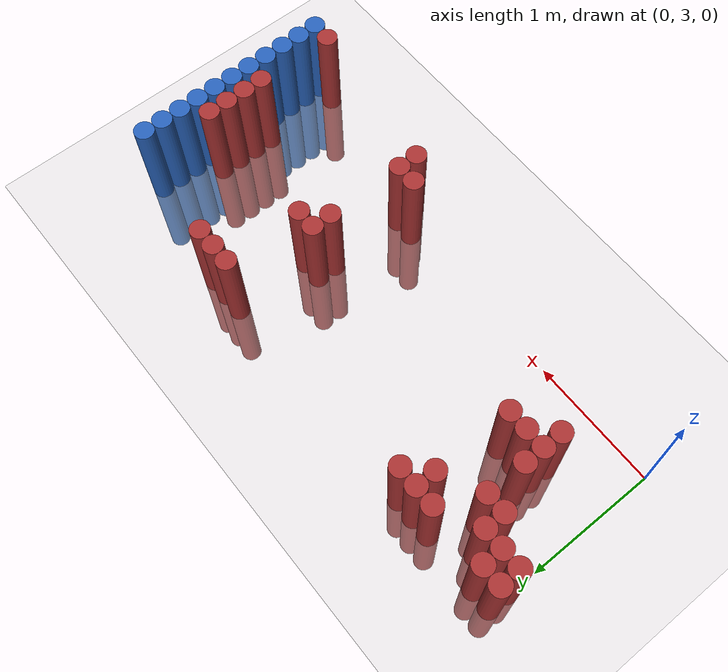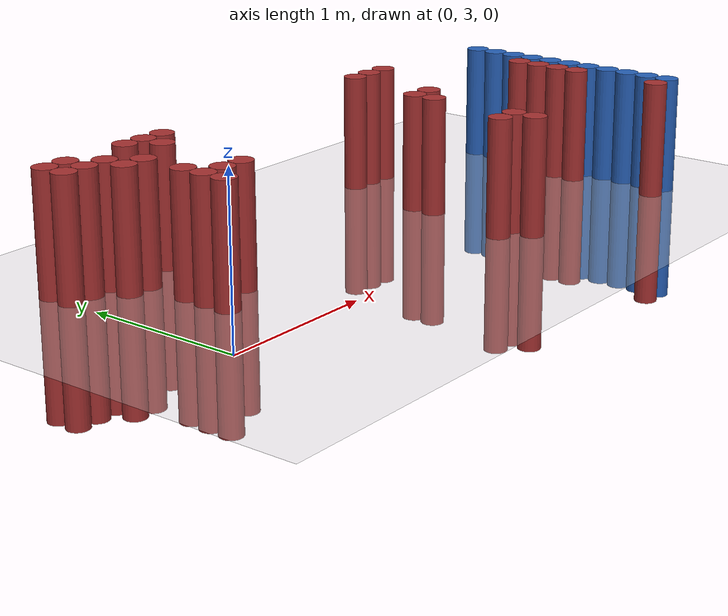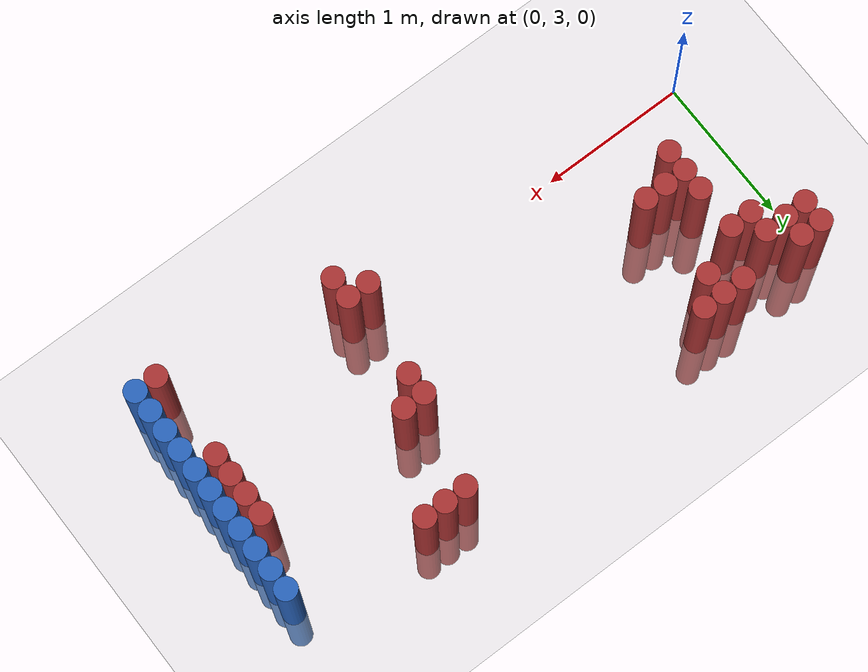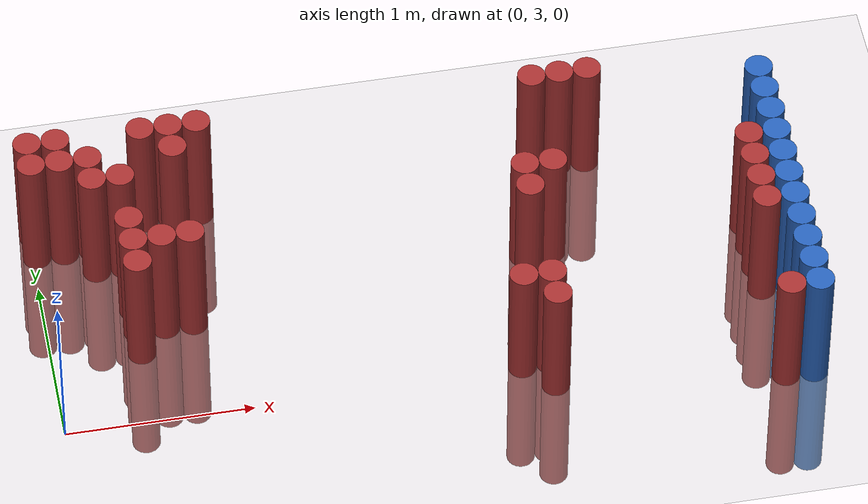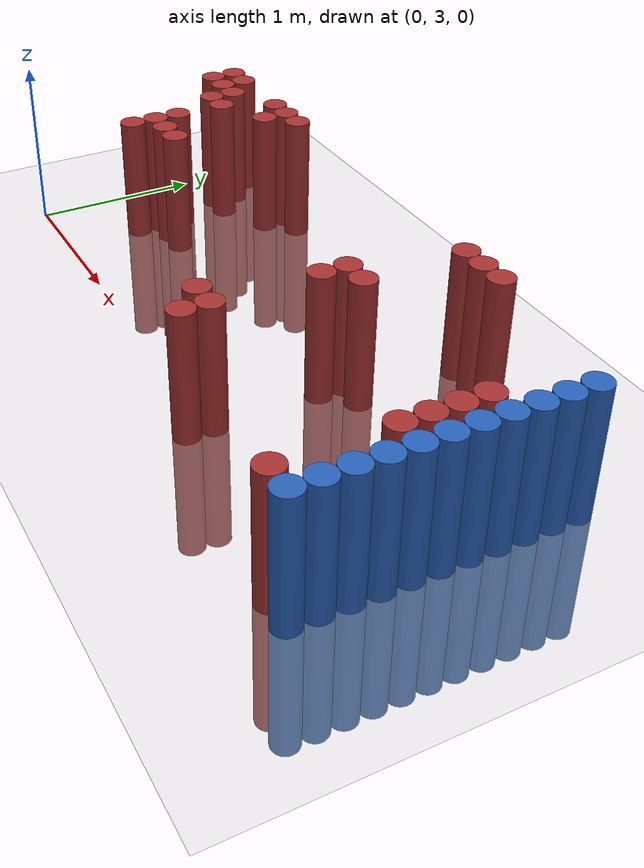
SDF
<sdf version="1.6">
 <world name="default">
  <model name="ground_plane">
   <static>1</static>
   <link name="link">
    <collision name="collision">
     <geometry><plane><normal>0 0 1</normal><size>100 100</size></plane></geometry>
     <surface><friction><ode><mu>100</mu><mu2>50</mu2></ode></friction></surface>
    </collision>
    <visual name="visual">
     <cast_shadows>0</cast_shadows>
     <geometry><plane><normal>0 0 1</normal><size>100 100</size></plane></geometry>
     <material>
      <script><uri>file://media/materials/scripts/gazebo.material</uri><name>Gazebo/Grey</name></script>
     </material>
    </visual>
   </link>
  </model>
  <model name="unit_cylinder_150">
   <static>1</static>
   <pose>3.925000 2.725000 0.000000 0.000000 0.000000 0.000000</pose>
   <link name="link">
    <inertial>
     <mass>1</mass>
     <inertia><ixx>0.145833</ixx><ixy>0</ixy><ixz>0</ixz><iyy>0.145833</iyy><iyz>0</iyz><izz>0.125</izz></inertia>
    </inertial>
    <collision name="collision">
     <geometry><cylinder><radius>0.075000</radius><length>1.5</length></cylinder></geometry>
    </collision>
    <visual name="visual">
     <geometry><cylinder><radius>0.075000</radius><length>1.5</length></cylinder></geometry>
     <material>
      <ambient>0.152000 0.379000 0.720000 1</ambient>
      <diffuse>0.152000 0.379000 0.720000 1</diffuse>
     </material>
     <material>
      <script><name>Gazebo/Grey</name><uri>file://media/materials/scripts/gazebo.material</uri></script>
     </material>
    </visual>
   </link>
  </model>
  <model name="unit_cylinder_152">
   <static>1</static>
   <pose>3.925000 2.875000 0.000000 0.000000 0.000000 0.000000</pose>
   <link name="link">
    <inertial>
     <mass>1</mass>
     <inertia><ixx>0.145833</ixx><ixy>0</ixy><ixz>0</ixz><iyy>0.145833</iyy><iyz>0</iyz><izz>0.125</izz></inertia>
    </inertial>
    <collision name="collision">
     <geometry><cylinder><radius>0.075000</radius><length>1.5</length></cylinder></geometry>
    </collision>
    <visual name="visual">
     <geometry><cylinder><radius>0.075000</radius><length>1.5</length></cylinder></geometry>
     <material>
      <ambient>0.152000 0.379000 0.720000 1</ambient>
      <diffuse>0.152000 0.379000 0.720000 1</diffuse>
     </material>
     <material>
      <script><name>Gazebo/Grey</name><uri>file://media/materials/scripts/gazebo.material</uri></script>
     </material>
    </visual>
   </link>
  </model>
  <model name="unit_cylinder_154">
   <static>1</static>
   <pose>3.925000 3.025000 0.000000 0.000000 0.000000 0.000000</pose>
   <link name="link">
    <inertial>
     <mass>1</mass>
     <inertia><ixx>0.145833</ixx><ixy>0</ixy><ixz>0</ixz><iyy>0.145833</iyy><iyz>0</iyz><izz>0.125</izz></inertia>
    </inertial>
    <collision name="collision">
     <geometry><cylinder><radius>0.075000</radius><length>1.5</length></cylinder></geometry>
    </collision>
    <visual name="visual">
     <geometry><cylinder><radius>0.075000</radius><length>1.5</length></cylinder></geometry>
     <material>
      <ambient>0.152000 0.379000 0.720000 1</ambient>
      <diffuse>0.152000 0.379000 0.720000 1</diffuse>
     </material>
     <material>
      <script><name>Gazebo/Grey</name><uri>file://media/materials/scripts/gazebo.material</uri></script>
     </material>
    </visual>
   </link>
  </model>
  <model name="unit_cylinder_156">
   <static>1</static>
   <pose>3.925000 3.175000 0.000000 0.000000 0.000000 0.000000</pose>
   <link name="link">
    <inertial>
     <mass>1</mass>
     <inertia><ixx>0.145833</ixx><ixy>0</ixy><ixz>0</ixz><iyy>0.145833</iyy><iyz>0</iyz><izz>0.125</izz></inertia>
    </inertial>
    <collision name="collision">
     <geometry><cylinder><radius>0.075000</radius><length>1.5</length></cylinder></geometry>
    </collision>
    <visual name="visual">
     <geometry><cylinder><radius>0.075000</radius><length>1.5</length></cylinder></geometry>
     <material>
      <ambient>0.152000 0.379000 0.720000 1</ambient>
      <diffuse>0.152000 0.379000 0.720000 1</diffuse>
     </material>
     <material>
      <script><name>Gazebo/Grey</name><uri>file://media/materials/scripts/gazebo.material</uri></script>
     </material>
    </visual>
   </link>
  </model>
  <model name="unit_cylinder_158">
   <static>1</static>
   <pose>3.925000 3.325000 0.000000 0.000000 0.000000 0.000000</pose>
   <link name="link">
    <inertial>
     <mass>1</mass>
     <inertia><ixx>0.145833</ixx><ixy>0</ixy><ixz>0</ixz><iyy>0.145833</iyy><iyz>0</iyz><izz>0.125</izz></inertia>
    </inertial>
    <collision name="collision">
     <geometry><cylinder><radius>0.075000</radius><length>1.5</length></cylinder></geometry>
    </collision>
    <visual name="visual">
     <geometry><cylinder><radius>0.075000</radius><length>1.5</length></cylinder></geometry>
     <material>
      <ambient>0.152000 0.379000 0.720000 1</ambient>
      <diffuse>0.152000 0.379000 0.720000 1</diffuse>
     </material>
     <material>
      <script><name>Gazebo/Grey</name><uri>file://media/materials/scripts/gazebo.material</uri></script>
     </material>
    </visual>
   </link>
  </model>
  <model name="unit_cylinder_160">
   <static>1</static>
   <pose>3.925000 3.475000 0.000000 0.000000 0.000000 0.000000</pose>
   <link name="link">
    <inertial>
     <mass>1</mass>
     <inertia><ixx>0.145833</ixx><ixy>0</ixy><ixz>0</ixz><iyy>0.145833</iyy><iyz>0</iyz><izz>0.125</izz></inertia>
    </inertial>
    <collision name="collision">
     <geometry><cylinder><radius>0.075000</radius><length>1.5</length></cylinder></geometry>
    </collision>
    <visual name="visual">
     <geometry><cylinder><radius>0.075000</radius><length>1.5</length></cylinder></geometry>
     <material>
      <ambient>0.152000 0.379000 0.720000 1</ambient>
      <diffuse>0.152000 0.379000 0.720000 1</diffuse>
     </material>
     <material>
      <script><name>Gazebo/Grey</name><uri>file://media/materials/scripts/gazebo.material</uri></script>
     </material>
    </visual>
   </link>
  </model>
  <model name="unit_cylinder_162">
   <static>1</static>
   <pose>3.925000 3.625000 0.000000 0.000000 0.000000 0.000000</pose>
   <link name="link">
    <inertial>
     <mass>1</mass>
     <inertia><ixx>0.145833</ixx><ixy>0</ixy><ixz>0</ixz><iyy>0.145833</iyy><iyz>0</iyz><izz>0.125</izz></inertia>
    </inertial>
    <collision name="collision">
     <geometry><cylinder><radius>0.075000</radius><length>1.5</length></cylinder></geometry>
    </collision>
    <visual name="visual">
     <geometry><cylinder><radius>0.075000</radius><length>1.5</length></cylinder></geometry>
     <material>
      <ambient>0.152000 0.379000 0.720000 1</ambient>
      <diffuse>0.152000 0.379000 0.720000 1</diffuse>
     </material>
     <material>
      <script><name>Gazebo/Grey</name><uri>file://media/materials/scripts/gazebo.material</uri></script>
     </material>
    </visual>
   </link>
  </model>
  <model name="unit_cylinder_164">
   <static>1</static>
   <pose>3.925000 3.775000 0.000000 0.000000 0.000000 0.000000</pose>
   <link name="link">
    <inertial>
     <mass>1</mass>
     <inertia><ixx>0.145833</ixx><ixy>0</ixy><ixz>0</ixz><iyy>0.145833</iyy><iyz>0</iyz><izz>0.125</izz></inertia>
    </inertial>
    <collision name="collision">
     <geometry><cylinder><radius>0.075000</radius><length>1.5</length></cylinder></geometry>
    </collision>
    <visual name="visual">
     <geometry><cylinder><radius>0.075000</radius><length>1.5</length></cylinder></geometry>
     <material>
      <ambient>0.152000 0.379000 0.720000 1</ambient>
      <diffuse>0.152000 0.379000 0.720000 1</diffuse>
     </material>
     <material>
      <script><name>Gazebo/Grey</name><uri>file://media/materials/scripts/gazebo.material</uri></script>
     </material>
    </visual>
   </link>
  </model>
  <model name="unit_cylinder_166">
   <static>1</static>
   <pose>3.925000 3.925000 0.000000 0.000000 0.000000 0.000000</pose>
   <link name="link">
    <inertial>
     <mass>1</mass>
     <inertia><ixx>0.145833</ixx><ixy>0</ixy><ixz>0</ixz><iyy>0.145833</iyy><iyz>0</iyz><izz>0.125</izz></inertia>
    </inertial>
    <collision name="collision">
     <geometry><cylinder><radius>0.075000</radius><length>1.5</length></cylinder></geometry>
    </collision>
    <visual name="visual">
     <geometry><cylinder><radius>0.075000</radius><length>1.5</length></cylinder></geometry>
     <material>
      <ambient>0.152000 0.379000 0.720000 1</ambient>
      <diffuse>0.152000 0.379000 0.720000 1</diffuse>
     </material>
     <material>
      <script><name>Gazebo/Grey</name><uri>file://media/materials/scripts/gazebo.material</uri></script>
     </material>
    </visual>
   </link>
  </model>
  <model name="unit_cylinder_168">
   <static>1</static>
   <pose>3.925000 4.075000 0.000000 0.000000 0.000000 0.000000</pose>
   <link name="link">
    <inertial>
     <mass>1</mass>
     <inertia><ixx>0.145833</ixx><ixy>0</ixy><ixz>0</ixz><iyy>0.145833</iyy><iyz>0</iyz><izz>0.125</izz></inertia>
    </inertial>
    <collision name="collision">
     <geometry><cylinder><radius>0.075000</radius><length>1.5</length></cylinder></geometry>
    </collision>
    <visual name="visual">
     <geometry><cylinder><radius>0.075000</radius><length>1.5</length></cylinder></geometry>
     <material>
      <ambient>0.152000 0.379000 0.720000 1</ambient>
      <diffuse>0.152000 0.379000 0.720000 1</diffuse>
     </material>
     <material>
      <script><name>Gazebo/Grey</name><uri>file://media/materials/scripts/gazebo.material</uri></script>
     </material>
    </visual>
   </link>
  </model>
  <model name="unit_cylinder_170">
   <static>1</static>
   <pose>3.925000 4.225000 0.000000 0.000000 0.000000 0.000000</pose>
   <link name="link">
    <inertial>
     <mass>1</mass>
     <inertia><ixx>0.145833</ixx><ixy>0</ixy><ixz>0</ixz><iyy>0.145833</iyy><iyz>0</iyz><izz>0.125</izz></inertia>
    </inertial>
    <collision name="collision">
     <geometry><cylinder><radius>0.075000</radius><length>1.5</length></cylinder></geometry>
    </collision>
    <visual name="visual">
     <geometry><cylinder><radius>0.075000</radius><length>1.5</length></cylinder></geometry>
     <material>
      <ambient>0.152000 0.379000 0.720000 1</ambient>
      <diffuse>0.152000 0.379000 0.720000 1</diffuse>
     </material>
     <material>
      <script><name>Gazebo/Grey</name><uri>file://media/materials/scripts/gazebo.material</uri></script>
     </material>
    </visual>
   </link>
  </model>
  <model name="unit_cylinder_388">
   <static>1</static>
   <pose>0.025000 4.225000 0.000000 0.000000 0.000000 0.000000</pose>
   <link name="link">
    <inertial>
     <mass>1</mass>
     <inertia><ixx>0.145833</ixx><ixy>0</ixy><ixz>0</ixz><iyy>0.145833</iyy><iyz>0</iyz><izz>0.125</izz></inertia>
    </inertial>
    <collision name="collision">
     <geometry><cylinder><radius>0.075000</radius><length>1.5</length></cylinder></geometry>
    </collision>
    <visual name="visual">
     <geometry><cylinder><radius>0.075000</radius><length>1.5</length></cylinder></geometry>
     <material>
      <ambient>0.648000 0.192000 0.192000 1</ambient>
      <diffuse>0.648000 0.192000 0.192000 1</diffuse>
     </material>
     <material>
      <script><name>Gazebo/Grey</name><uri>file://media/materials/scripts/gazebo.material</uri></script>
     </material>
    </visual>
   </link>
  </model>
  <model name="unit_cylinder_389">
   <static>1</static>
   <pose>0.025000 4.375000 0.000000 0.000000 0.000000 0.000000</pose>
   <link name="link">
    <inertial>
     <mass>1</mass>
     <inertia><ixx>0.145833</ixx><ixy>0</ixy><ixz>0</ixz><iyy>0.145833</iyy><iyz>0</iyz><izz>0.125</izz></inertia>
    </inertial>
    <collision name="collision">
     <geometry><cylinder><radius>0.075000</radius><length>1.5</length></cylinder></geometry>
    </collision>
    <visual name="visual">
     <geometry><cylinder><radius>0.075000</radius><length>1.5</length></cylinder></geometry>
     <material>
      <ambient>0.648000 0.192000 0.192000 1</ambient>
      <diffuse>0.648000 0.192000 0.192000 1</diffuse>
     </material>
     <material>
      <script><name>Gazebo/Grey</name><uri>file://media/materials/scripts/gazebo.material</uri></script>
     </material>
    </visual>
   </link>
  </model>
  <model name="unit_cylinder_394">
   <static>1</static>
   <pose>0.175000 4.225000 0.000000 0.000000 0.000000 0.000000</pose>
   <link name="link">
    <inertial>
     <mass>1</mass>
     <inertia><ixx>0.145833</ixx><ixy>0</ixy><ixz>0</ixz><iyy>0.145833</iyy><iyz>0</iyz><izz>0.125</izz></inertia>
    </inertial>
    <collision name="collision">
     <geometry><cylinder><radius>0.075000</radius><length>1.5</length></cylinder></geometry>
    </collision>
    <visual name="visual">
     <geometry><cylinder><radius>0.075000</radius><length>1.5</length></cylinder></geometry>
     <material>
      <ambient>0.648000 0.192000 0.192000 1</ambient>
      <diffuse>0.648000 0.192000 0.192000 1</diffuse>
     </material>
     <material>
      <script><name>Gazebo/Grey</name><uri>file://media/materials/scripts/gazebo.material</uri></script>
     </material>
    </visual>
   </link>
  </model>
  <model name="unit_cylinder_395">
   <static>1</static>
   <pose>0.175000 4.375000 0.000000 0.000000 0.000000 0.000000</pose>
   <link name="link">
    <inertial>
     <mass>1</mass>
     <inertia><ixx>0.145833</ixx><ixy>0</ixy><ixz>0</ixz><iyy>0.145833</iyy><iyz>0</iyz><izz>0.125</izz></inertia>
    </inertial>
    <collision name="collision">
     <geometry><cylinder><radius>0.075000</radius><length>1.5</length></cylinder></geometry>
    </collision>
    <visual name="visual">
     <geometry><cylinder><radius>0.075000</radius><length>1.5</length></cylinder></geometry>
     <material>
      <ambient>0.648000 0.192000 0.192000 1</ambient>
      <diffuse>0.648000 0.192000 0.192000 1</diffuse>
     </material>
     <material>
      <script><name>Gazebo/Grey</name><uri>file://media/materials/scripts/gazebo.material</uri></script>
     </material>
    </visual>
   </link>
  </model>
  <model name="unit_cylinder_400">
   <static>1</static>
   <pose>0.325000 4.075000 0.000000 0.000000 0.000000 0.000000</pose>
   <link name="link">
    <inertial>
     <mass>1</mass>
     <inertia><ixx>0.145833</ixx><ixy>0</ixy><ixz>0</ixz><iyy>0.145833</iyy><iyz>0</iyz><izz>0.125</izz></inertia>
    </inertial>
    <collision name="collision">
     <geometry><cylinder><radius>0.075000</radius><length>1.5</length></cylinder></geometry>
    </collision>
    <visual name="visual">
     <geometry><cylinder><radius>0.075000</radius><length>1.5</length></cylinder></geometry>
     <material>
      <ambient>0.648000 0.192000 0.192000 1</ambient>
      <diffuse>0.648000 0.192000 0.192000 1</diffuse>
     </material>
     <material>
      <script><name>Gazebo/Grey</name><uri>file://media/materials/scripts/gazebo.material</uri></script>
     </material>
    </visual>
   </link>
  </model>
  <model name="unit_cylinder_401">
   <static>1</static>
   <pose>0.325000 4.225000 0.000000 0.000000 0.000000 0.000000</pose>
   <link name="link">
    <inertial>
     <mass>1</mass>
     <inertia><ixx>0.145833</ixx><ixy>0</ixy><ixz>0</ixz><iyy>0.145833</iyy><iyz>0</iyz><izz>0.125</izz></inertia>
    </inertial>
    <collision name="collision">
     <geometry><cylinder><radius>0.075000</radius><length>1.5</length></cylinder></geometry>
    </collision>
    <visual name="visual">
     <geometry><cylinder><radius>0.075000</radius><length>1.5</length></cylinder></geometry>
     <material>
      <ambient>0.648000 0.192000 0.192000 1</ambient>
      <diffuse>0.648000 0.192000 0.192000 1</diffuse>
     </material>
     <material>
      <script><name>Gazebo/Grey</name><uri>file://media/materials/scripts/gazebo.material</uri></script>
     </material>
    </visual>
   </link>
  </model>
  <model name="unit_cylinder_406">
   <static>1</static>
   <pose>0.475000 3.475000 0.000000 0.000000 0.000000 0.000000</pose>
   <link name="link">
    <inertial>
     <mass>1</mass>
     <inertia><ixx>0.145833</ixx><ixy>0</ixy><ixz>0</ixz><iyy>0.145833</iyy><iyz>0</iyz><izz>0.125</izz></inertia>
    </inertial>
    <collision name="collision">
     <geometry><cylinder><radius>0.075000</radius><length>1.5</length></cylinder></geometry>
    </collision>
    <visual name="visual">
     <geometry><cylinder><radius>0.075000</radius><length>1.5</length></cylinder></geometry>
     <material>
      <ambient>0.648000 0.192000 0.192000 1</ambient>
      <diffuse>0.648000 0.192000 0.192000 1</diffuse>
     </material>
     <material>
      <script><name>Gazebo/Grey</name><uri>file://media/materials/scripts/gazebo.material</uri></script>
     </material>
    </visual>
   </link>
  </model>
  <model name="unit_cylinder_407">
   <static>1</static>
   <pose>0.475000 3.625000 0.000000 0.000000 0.000000 0.000000</pose>
   <link name="link">
    <inertial>
     <mass>1</mass>
     <inertia><ixx>0.145833</ixx><ixy>0</ixy><ixz>0</ixz><iyy>0.145833</iyy><iyz>0</iyz><izz>0.125</izz></inertia>
    </inertial>
    <collision name="collision">
     <geometry><cylinder><radius>0.075000</radius><length>1.5</length></cylinder></geometry>
    </collision>
    <visual name="visual">
     <geometry><cylinder><radius>0.075000</radius><length>1.5</length></cylinder></geometry>
     <material>
      <ambient>0.648000 0.192000 0.192000 1</ambient>
      <diffuse>0.648000 0.192000 0.192000 1</diffuse>
     </material>
     <material>
      <script><name>Gazebo/Grey</name><uri>file://media/materials/scripts/gazebo.material</uri></script>
     </material>
    </visual>
   </link>
  </model>
  <model name="unit_cylinder_408">
   <static>1</static>
   <pose>0.475000 3.775000 0.000000 0.000000 0.000000 0.000000</pose>
   <link name="link">
    <inertial>
     <mass>1</mass>
     <inertia><ixx>0.145833</ixx><ixy>0</ixy><ixz>0</ixz><iyy>0.145833</iyy><iyz>0</iyz><izz>0.125</izz></inertia>
    </inertial>
    <collision name="collision">
     <geometry><cylinder><radius>0.075000</radius><length>1.5</length></cylinder></geometry>
    </collision>
    <visual name="visual">
     <geometry><cylinder><radius>0.075000</radius><length>1.5</length></cylinder></geometry>
     <material>
      <ambient>0.648000 0.192000 0.192000 1</ambient>
      <diffuse>0.648000 0.192000 0.192000 1</diffuse>
     </material>
     <material>
      <script><name>Gazebo/Grey</name><uri>file://media/materials/scripts/gazebo.material</uri></script>
     </material>
    </visual>
   </link>
  </model>
  <model name="unit_cylinder_409">
   <static>1</static>
   <pose>0.475000 4.075000 0.000000 0.000000 0.000000 0.000000</pose>
   <link name="link">
    <inertial>
     <mass>1</mass>
     <inertia><ixx>0.145833</ixx><ixy>0</ixy><ixz>0</ixz><iyy>0.145833</iyy><iyz>0</iyz><izz>0.125</izz></inertia>
    </inertial>
    <collision name="collision">
     <geometry><cylinder><radius>0.075000</radius><length>1.5</length></cylinder></geometry>
    </collision>
    <visual name="visual">
     <geometry><cylinder><radius>0.075000</radius><length>1.5</length></cylinder></geometry>
     <material>
      <ambient>0.648000 0.192000 0.192000 1</ambient>
      <diffuse>0.648000 0.192000 0.192000 1</diffuse>
     </material>
     <material>
      <script><name>Gazebo/Grey</name><uri>file://media/materials/scripts/gazebo.material</uri></script>
     </material>
    </visual>
   </link>
  </model>
  <model name="unit_cylinder_412">
   <static>1</static>
   <pose>0.625000 3.625000 0.000000 0.000000 0.000000 0.000000</pose>
   <link name="link">
    <inertial>
     <mass>1</mass>
     <inertia><ixx>0.145833</ixx><ixy>0</ixy><ixz>0</ixz><iyy>0.145833</iyy><iyz>0</iyz><izz>0.125</izz></inertia>
    </inertial>
    <collision name="collision">
     <geometry><cylinder><radius>0.075000</radius><length>1.5</length></cylinder></geometry>
    </collision>
    <visual name="visual">
     <geometry><cylinder><radius>0.075000</radius><length>1.5</length></cylinder></geometry>
     <material>
      <ambient>0.648000 0.192000 0.192000 1</ambient>
      <diffuse>0.648000 0.192000 0.192000 1</diffuse>
     </material>
     <material>
      <script><name>Gazebo/Grey</name><uri>file://media/materials/scripts/gazebo.material</uri></script>
     </material>
    </visual>
   </link>
  </model>
  <model name="unit_cylinder_413">
   <static>1</static>
   <pose>0.625000 4.375000 0.000000 0.000000 0.000000 0.000000</pose>
   <link name="link">
    <inertial>
     <mass>1</mass>
     <inertia><ixx>0.145833</ixx><ixy>0</ixy><ixz>0</ixz><iyy>0.145833</iyy><iyz>0</iyz><izz>0.125</izz></inertia>
    </inertial>
    <collision name="collision">
     <geometry><cylinder><radius>0.075000</radius><length>1.5</length></cylinder></geometry>
    </collision>
    <visual name="visual">
     <geometry><cylinder><radius>0.075000</radius><length>1.5</length></cylinder></geometry>
     <material>
      <ambient>0.648000 0.192000 0.192000 1</ambient>
      <diffuse>0.648000 0.192000 0.192000 1</diffuse>
     </material>
     <material>
      <script><name>Gazebo/Grey</name><uri>file://media/materials/scripts/gazebo.material</uri></script>
     </material>
    </visual>
   </link>
  </model>
  <model name="unit_cylinder_418">
   <static>1</static>
   <pose>0.775000 3.625000 0.000000 0.000000 0.000000 0.000000</pose>
   <link name="link">
    <inertial>
     <mass>1</mass>
     <inertia><ixx>0.145833</ixx><ixy>0</ixy><ixz>0</ixz><iyy>0.145833</iyy><iyz>0</iyz><izz>0.125</izz></inertia>
    </inertial>
    <collision name="collision">
     <geometry><cylinder><radius>0.075000</radius><length>1.5</length></cylinder></geometry>
    </collision>
    <visual name="visual">
     <geometry><cylinder><radius>0.075000</radius><length>1.5</length></cylinder></geometry>
     <material>
      <ambient>0.648000 0.192000 0.192000 1</ambient>
      <diffuse>0.648000 0.192000 0.192000 1</diffuse>
     </material>
     <material>
      <script><name>Gazebo/Grey</name><uri>file://media/materials/scripts/gazebo.material</uri></script>
     </material>
    </visual>
   </link>
  </model>
  <model name="unit_cylinder_419">
   <static>1</static>
   <pose>0.775000 4.225000 0.000000 0.000000 0.000000 0.000000</pose>
   <link name="link">
    <inertial>
     <mass>1</mass>
     <inertia><ixx>0.145833</ixx><ixy>0</ixy><ixz>0</ixz><iyy>0.145833</iyy><iyz>0</iyz><izz>0.125</izz></inertia>
    </inertial>
    <collision name="collision">
     <geometry><cylinder><radius>0.075000</radius><length>1.5</length></cylinder></geometry>
    </collision>
    <visual name="visual">
     <geometry><cylinder><radius>0.075000</radius><length>1.5</length></cylinder></geometry>
     <material>
      <ambient>0.648000 0.192000 0.192000 1</ambient>
      <diffuse>0.648000 0.192000 0.192000 1</diffuse>
     </material>
     <material>
      <script><name>Gazebo/Grey</name><uri>file://media/materials/scripts/gazebo.material</uri></script>
     </material>
    </visual>
   </link>
  </model>
  <model name="unit_cylinder_420">
   <static>1</static>
   <pose>0.775000 4.375000 0.000000 0.000000 0.000000 0.000000</pose>
   <link name="link">
    <inertial>
     <mass>1</mass>
     <inertia><ixx>0.145833</ixx><ixy>0</ixy><ixz>0</ixz><iyy>0.145833</iyy><iyz>0</iyz><izz>0.125</izz></inertia>
    </inertial>
    <collision name="collision">
     <geometry><cylinder><radius>0.075000</radius><length>1.5</length></cylinder></geometry>
    </collision>
    <visual name="visual">
     <geometry><cylinder><radius>0.075000</radius><length>1.5</length></cylinder></geometry>
     <material>
      <ambient>0.648000 0.192000 0.192000 1</ambient>
      <diffuse>0.648000 0.192000 0.192000 1</diffuse>
     </material>
     <material>
      <script><name>Gazebo/Grey</name><uri>file://media/materials/scripts/gazebo.material</uri></script>
     </material>
    </visual>
   </link>
  </model>
  <model name="unit_cylinder_423">
   <static>1</static>
   <pose>0.925000 4.375000 0.000000 0.000000 0.000000 0.000000</pose>
   <link name="link">
    <inertial>
     <mass>1</mass>
     <inertia><ixx>0.145833</ixx><ixy>0</ixy><ixz>0</ixz><iyy>0.145833</iyy><iyz>0</iyz><izz>0.125</izz></inertia>
    </inertial>
    <collision name="collision">
     <geometry><cylinder><radius>0.075000</radius><length>1.5</length></cylinder></geometry>
    </collision>
    <visual name="visual">
     <geometry><cylinder><radius>0.075000</radius><length>1.5</length></cylinder></geometry>
     <material>
      <ambient>0.648000 0.192000 0.192000 1</ambient>
      <diffuse>0.648000 0.192000 0.192000 1</diffuse>
     </material>
     <material>
      <script><name>Gazebo/Grey</name><uri>file://media/materials/scripts/gazebo.material</uri></script>
     </material>
    </visual>
   </link>
  </model>
  <model name="unit_cylinder_456">
   <static>1</static>
   <pose>2.425000 3.025000 0.000000 0.000000 0.000000 0.000000</pose>
   <link name="link">
    <inertial>
     <mass>1</mass>
     <inertia><ixx>0.145833</ixx><ixy>0</ixy><ixz>0</ixz><iyy>0.145833</iyy><iyz>0</iyz><izz>0.125</izz></inertia>
    </inertial>
    <collision name="collision">
     <geometry><cylinder><radius>0.075000</radius><length>1.5</length></cylinder></geometry>
    </collision>
    <visual name="visual">
     <geometry><cylinder><radius>0.075000</radius><length>1.5</length></cylinder></geometry>
     <material>
      <ambient>0.648000 0.192000 0.192000 1</ambient>
      <diffuse>0.648000 0.192000 0.192000 1</diffuse>
     </material>
     <material>
      <script><name>Gazebo/Grey</name><uri>file://media/materials/scripts/gazebo.material</uri></script>
     </material>
    </visual>
   </link>
  </model>
  <model name="unit_cylinder_459">
   <static>1</static>
   <pose>2.575000 2.875000 0.000000 0.000000 0.000000 0.000000</pose>
   <link name="link">
    <inertial>
     <mass>1</mass>
     <inertia><ixx>0.145833</ixx><ixy>0</ixy><ixz>0</ixz><iyy>0.145833</iyy><iyz>0</iyz><izz>0.125</izz></inertia>
    </inertial>
    <collision name="collision">
     <geometry><cylinder><radius>0.075000</radius><length>1.5</length></cylinder></geometry>
    </collision>
    <visual name="visual">
     <geometry><cylinder><radius>0.075000</radius><length>1.5</length></cylinder></geometry>
     <material>
      <ambient>0.648000 0.192000 0.192000 1</ambient>
      <diffuse>0.648000 0.192000 0.192000 1</diffuse>
     </material>
     <material>
      <script><name>Gazebo/Grey</name><uri>file://media/materials/scripts/gazebo.material</uri></script>
     </material>
    </visual>
   </link>
  </model>
  <model name="unit_cylinder_460">
   <static>1</static>
   <pose>2.575000 3.025000 0.000000 0.000000 0.000000 0.000000</pose>
   <link name="link">
    <inertial>
     <mass>1</mass>
     <inertia><ixx>0.145833</ixx><ixy>0</ixy><ixz>0</ixz><iyy>0.145833</iyy><iyz>0</iyz><izz>0.125</izz></inertia>
    </inertial>
    <collision name="collision">
     <geometry><cylinder><radius>0.075000</radius><length>1.5</length></cylinder></geometry>
    </collision>
    <visual name="visual">
     <geometry><cylinder><radius>0.075000</radius><length>1.5</length></cylinder></geometry>
     <material>
      <ambient>0.648000 0.192000 0.192000 1</ambient>
      <diffuse>0.648000 0.192000 0.192000 1</diffuse>
     </material>
     <material>
      <script><name>Gazebo/Grey</name><uri>file://media/materials/scripts/gazebo.material</uri></script>
     </material>
    </visual>
   </link>
  </model>
  <model name="unit_cylinder_461">
   <static>1</static>
   <pose>2.575000 3.625000 0.000000 0.000000 0.000000 0.000000</pose>
   <link name="link">
    <inertial>
     <mass>1</mass>
     <inertia><ixx>0.145833</ixx><ixy>0</ixy><ixz>0</ixz><iyy>0.145833</iyy><iyz>0</iyz><izz>0.125</izz></inertia>
    </inertial>
    <collision name="collision">
     <geometry><cylinder><radius>0.075000</radius><length>1.5</length></cylinder></geometry>
    </collision>
    <visual name="visual">
     <geometry><cylinder><radius>0.075000</radius><length>1.5</length></cylinder></geometry>
     <material>
      <ambient>0.648000 0.192000 0.192000 1</ambient>
      <diffuse>0.648000 0.192000 0.192000 1</diffuse>
     </material>
     <material>
      <script><name>Gazebo/Grey</name><uri>file://media/materials/scripts/gazebo.material</uri></script>
     </material>
    </visual>
   </link>
  </model>
  <model name="unit_cylinder_462">
   <static>1</static>
   <pose>2.575000 3.775000 0.000000 0.000000 0.000000 0.000000</pose>
   <link name="link">
    <inertial>
     <mass>1</mass>
     <inertia><ixx>0.145833</ixx><ixy>0</ixy><ixz>0</ixz><iyy>0.145833</iyy><iyz>0</iyz><izz>0.125</izz></inertia>
    </inertial>
    <collision name="collision">
     <geometry><cylinder><radius>0.075000</radius><length>1.5</length></cylinder></geometry>
    </collision>
    <visual name="visual">
     <geometry><cylinder><radius>0.075000</radius><length>1.5</length></cylinder></geometry>
     <material>
      <ambient>0.648000 0.192000 0.192000 1</ambient>
      <diffuse>0.648000 0.192000 0.192000 1</diffuse>
     </material>
     <material>
      <script><name>Gazebo/Grey</name><uri>file://media/materials/scripts/gazebo.material</uri></script>
     </material>
    </visual>
   </link>
  </model>
  <model name="unit_cylinder_464">
   <static>1</static>
   <pose>2.725000 3.775000 0.000000 0.000000 0.000000 0.000000</pose>
   <link name="link">
    <inertial>
     <mass>1</mass>
     <inertia><ixx>0.145833</ixx><ixy>0</ixy><ixz>0</ixz><iyy>0.145833</iyy><iyz>0</iyz><izz>0.125</izz></inertia>
    </inertial>
    <collision name="collision">
     <geometry><cylinder><radius>0.075000</radius><length>1.5</length></cylinder></geometry>
    </collision>
    <visual name="visual">
     <geometry><cylinder><radius>0.075000</radius><length>1.5</length></cylinder></geometry>
     <material>
      <ambient>0.648000 0.192000 0.192000 1</ambient>
      <diffuse>0.648000 0.192000 0.192000 1</diffuse>
     </material>
     <material>
      <script><name>Gazebo/Grey</name><uri>file://media/materials/scripts/gazebo.material</uri></script>
     </material>
    </visual>
   </link>
  </model>
  <model name="unit_cylinder_465">
   <static>1</static>
   <pose>2.725000 4.375000 0.000000 0.000000 0.000000 0.000000</pose>
   <link name="link">
    <inertial>
     <mass>1</mass>
     <inertia><ixx>0.145833</ixx><ixy>0</ixy><ixz>0</ixz><iyy>0.145833</iyy><iyz>0</iyz><izz>0.125</izz></inertia>
    </inertial>
    <collision name="collision">
     <geometry><cylinder><radius>0.075000</radius><length>1.5</length></cylinder></geometry>
    </collision>
    <visual name="visual">
     <geometry><cylinder><radius>0.075000</radius><length>1.5</length></cylinder></geometry>
     <material>
      <ambient>0.648000 0.192000 0.192000 1</ambient>
      <diffuse>0.648000 0.192000 0.192000 1</diffuse>
     </material>
     <material>
      <script><name>Gazebo/Grey</name><uri>file://media/materials/scripts/gazebo.material</uri></script>
     </material>
    </visual>
   </link>
  </model>
  <model name="unit_cylinder_469">
   <static>1</static>
   <pose>2.875000 4.375000 0.000000 0.000000 0.000000 0.000000</pose>
   <link name="link">
    <inertial>
     <mass>1</mass>
     <inertia><ixx>0.145833</ixx><ixy>0</ixy><ixz>0</ixz><iyy>0.145833</iyy><iyz>0</iyz><izz>0.125</izz></inertia>
    </inertial>
    <collision name="collision">
     <geometry><cylinder><radius>0.075000</radius><length>1.5</length></cylinder></geometry>
    </collision>
    <visual name="visual">
     <geometry><cylinder><radius>0.075000</radius><length>1.5</length></cylinder></geometry>
     <material>
      <ambient>0.648000 0.192000 0.192000 1</ambient>
      <diffuse>0.648000 0.192000 0.192000 1</diffuse>
     </material>
     <material>
      <script><name>Gazebo/Grey</name><uri>file://media/materials/scripts/gazebo.material</uri></script>
     </material>
    </visual>
   </link>
  </model>
  <model name="unit_cylinder_475">
   <static>1</static>
   <pose>3.025000 4.375000 0.000000 0.000000 0.000000 0.000000</pose>
   <link name="link">
    <inertial>
     <mass>1</mass>
     <inertia><ixx>0.145833</ixx><ixy>0</ixy><ixz>0</ixz><iyy>0.145833</iyy><iyz>0</iyz><izz>0.125</izz></inertia>
    </inertial>
    <collision name="collision">
     <geometry><cylinder><radius>0.075000</radius><length>1.5</length></cylinder></geometry>
    </collision>
    <visual name="visual">
     <geometry><cylinder><radius>0.075000</radius><length>1.5</length></cylinder></geometry>
     <material>
      <ambient>0.648000 0.192000 0.192000 1</ambient>
      <diffuse>0.648000 0.192000 0.192000 1</diffuse>
     </material>
     <material>
      <script><name>Gazebo/Grey</name><uri>file://media/materials/scripts/gazebo.material</uri></script>
     </material>
    </visual>
   </link>
  </model>
  <model name="unit_cylinder_508">
   <static>1</static>
   <pose>3.775000 2.725000 0.000000 0.000000 0.000000 0.000000</pose>
   <link name="link">
    <inertial>
     <mass>1</mass>
     <inertia><ixx>0.145833</ixx><ixy>0</ixy><ixz>0</ixz><iyy>0.145833</iyy><iyz>0</iyz><izz>0.125</izz></inertia>
    </inertial>
    <collision name="collision">
     <geometry><cylinder><radius>0.075000</radius><length>1.5</length></cylinder></geometry>
    </collision>
    <visual name="visual">
     <geometry><cylinder><radius>0.075000</radius><length>1.5</length></cylinder></geometry>
     <material>
      <ambient>0.648000 0.192000 0.192000 1</ambient>
      <diffuse>0.648000 0.192000 0.192000 1</diffuse>
     </material>
     <material>
      <script><name>Gazebo/Grey</name><uri>file://media/materials/scripts/gazebo.material</uri></script>
     </material>
    </visual>
   </link>
  </model>
  <model name="unit_cylinder_509">
   <static>1</static>
   <pose>3.775000 3.325000 0.000000 0.000000 0.000000 0.000000</pose>
   <link name="link">
    <inertial>
     <mass>1</mass>
     <inertia><ixx>0.145833</ixx><ixy>0</ixy><ixz>0</ixz><iyy>0.145833</iyy><iyz>0</iyz><izz>0.125</izz></inertia>
    </inertial>
    <collision name="collision">
     <geometry><cylinder><radius>0.075000</radius><length>1.5</length></cylinder></geometry>
    </collision>
    <visual name="visual">
     <geometry><cylinder><radius>0.075000</radius><length>1.5</length></cylinder></geometry>
     <material>
      <ambient>0.648000 0.192000 0.192000 1</ambient>
      <diffuse>0.648000 0.192000 0.192000 1</diffuse>
     </material>
     <material>
      <script><name>Gazebo/Grey</name><uri>file://media/materials/scripts/gazebo.material</uri></script>
     </material>
    </visual>
   </link>
  </model>
  <model name="unit_cylinder_510">
   <static>1</static>
   <pose>3.775000 3.475000 0.000000 0.000000 0.000000 0.000000</pose>
   <link name="link">
    <inertial>
     <mass>1</mass>
     <inertia><ixx>0.145833</ixx><ixy>0</ixy><ixz>0</ixz><iyy>0.145833</iyy><iyz>0</iyz><izz>0.125</izz></inertia>
    </inertial>
    <collision name="collision">
     <geometry><cylinder><radius>0.075000</radius><length>1.5</length></cylinder></geometry>
    </collision>
    <visual name="visual">
     <geometry><cylinder><radius>0.075000</radius><length>1.5</length></cylinder></geometry>
     <material>
      <ambient>0.648000 0.192000 0.192000 1</ambient>
      <diffuse>0.648000 0.192000 0.192000 1</diffuse>
     </material>
     <material>
      <script><name>Gazebo/Grey</name><uri>file://media/materials/scripts/gazebo.material</uri></script>
     </material>
    </visual>
   </link>
  </model>
  <model name="unit_cylinder_511">
   <static>1</static>
   <pose>3.775000 3.625000 0.000000 0.000000 0.000000 0.000000</pose>
   <link name="link">
    <inertial>
     <mass>1</mass>
     <inertia><ixx>0.145833</ixx><ixy>0</ixy><ixz>0</ixz><iyy>0.145833</iyy><iyz>0</iyz><izz>0.125</izz></inertia>
    </inertial>
    <collision name="collision">
     <geometry><cylinder><radius>0.075000</radius><length>1.5</length></cylinder></geometry>
    </collision>
    <visual name="visual">
     <geometry><cylinder><radius>0.075000</radius><length>1.5</length></cylinder></geometry>
     <material>
      <ambient>0.648000 0.192000 0.192000 1</ambient>
      <diffuse>0.648000 0.192000 0.192000 1</diffuse>
     </material>
     <material>
      <script><name>Gazebo/Grey</name><uri>file://media/materials/scripts/gazebo.material</uri></script>
     </material>
    </visual>
   </link>
  </model>
  <model name="unit_cylinder_512">
   <static>1</static>
   <pose>3.775000 3.775000 0.000000 0.000000 0.000000 0.000000</pose>
   <link name="link">
    <inertial>
     <mass>1</mass>
     <inertia><ixx>0.145833</ixx><ixy>0</ixy><ixz>0</ixz><iyy>0.145833</iyy><iyz>0</iyz><izz>0.125</izz></inertia>
    </inertial>
    <collision name="collision">
     <geometry><cylinder><radius>0.075000</radius><length>1.5</length></cylinder></geometry>
    </collision>
    <visual name="visual">
     <geometry><cylinder><radius>0.075000</radius><length>1.5</length></cylinder></geometry>
     <material>
      <ambient>0.648000 0.192000 0.192000 1</ambient>
      <diffuse>0.648000 0.192000 0.192000 1</diffuse>
     </material>
     <material>
      <script><name>Gazebo/Grey</name><uri>file://media/materials/scripts/gazebo.material</uri></script>
     </material>
    </visual>
   </link>
  </model>
  <model name="unit_cylinder_544">
   <static>1</static>
   <pose>3.925000 2.725000 0.000000 0.000000 0.000000 0.000000</pose>
   <link name="link">
    <inertial>
     <mass>1</mass>
     <inertia><ixx>0.145833</ixx><ixy>0</ixy><ixz>0</ixz><iyy>0.145833</iyy><iyz>0</iyz><izz>0.125</izz></inertia>
    </inertial>
    <collision name="collision">
     <geometry><cylinder><radius>0.075000</radius><length>1.5</length></cylinder></geometry>
    </collision>
    <visual name="visual">
     <geometry><cylinder><radius>0.075000</radius><length>1.5</length></cylinder></geometry>
     <material>
      <ambient>0.152000 0.379000 0.720000 1</ambient>
      <diffuse>0.152000 0.379000 0.720000 1</diffuse>
     </material>
     <material>
      <script><name>Gazebo/Grey</name><uri>file://media/materials/scripts/gazebo.material</uri></script>
     </material>
    </visual>
   </link>
  </model>
  <model name="unit_cylinder_545">
   <static>1</static>
   <pose>3.925000 2.875000 0.000000 0.000000 0.000000 0.000000</pose>
   <link name="link">
    <inertial>
     <mass>1</mass>
     <inertia><ixx>0.145833</ixx><ixy>0</ixy><ixz>0</ixz><iyy>0.145833</iyy><iyz>0</iyz><izz>0.125</izz></inertia>
    </inertial>
    <collision name="collision">
     <geometry><cylinder><radius>0.075000</radius><length>1.5</length></cylinder></geometry>
    </collision>
    <visual name="visual">
     <geometry><cylinder><radius>0.075000</radius><length>1.5</length></cylinder></geometry>
     <material>
      <ambient>0.152000 0.379000 0.720000 1</ambient>
      <diffuse>0.152000 0.379000 0.720000 1</diffuse>
     </material>
     <material>
      <script><name>Gazebo/Grey</name><uri>file://media/materials/scripts/gazebo.material</uri></script>
     </material>
    </visual>
   </link>
  </model>
  <model name="unit_cylinder_546">
   <static>1</static>
   <pose>3.925000 3.025000 0.000000 0.000000 0.000000 0.000000</pose>
   <link name="link">
    <inertial>
     <mass>1</mass>
     <inertia><ixx>0.145833</ixx><ixy>0</ixy><ixz>0</ixz><iyy>0.145833</iyy><iyz>0</iyz><izz>0.125</izz></inertia>
    </inertial>
    <collision name="collision">
     <geometry><cylinder><radius>0.075000</radius><length>1.5</length></cylinder></geometry>
    </collision>
    <visual name="visual">
     <geometry><cylinder><radius>0.075000</radius><length>1.5</length></cylinder></geometry>
     <material>
      <ambient>0.152000 0.379000 0.720000 1</ambient>
      <diffuse>0.152000 0.379000 0.720000 1</diffuse>
     </material>
     <material>
      <script><name>Gazebo/Grey</name><uri>file://media/materials/scripts/gazebo.material</uri></script>
     </material>
    </visual>
   </link>
  </model>
  <model name="unit_cylinder_547">
   <static>1</static>
   <pose>3.925000 3.175000 0.000000 0.000000 0.000000 0.000000</pose>
   <link name="link">
    <inertial>
     <mass>1</mass>
     <inertia><ixx>0.145833</ixx><ixy>0</ixy><ixz>0</ixz><iyy>0.145833</iyy><iyz>0</iyz><izz>0.125</izz></inertia>
    </inertial>
    <collision name="collision">
     <geometry><cylinder><radius>0.075000</radius><length>1.5</length></cylinder></geometry>
    </collision>
    <visual name="visual">
     <geometry><cylinder><radius>0.075000</radius><length>1.5</length></cylinder></geometry>
     <material>
      <ambient>0.152000 0.379000 0.720000 1</ambient>
      <diffuse>0.152000 0.379000 0.720000 1</diffuse>
     </material>
     <material>
      <script><name>Gazebo/Grey</name><uri>file://media/materials/scripts/gazebo.material</uri></script>
     </material>
    </visual>
   </link>
  </model>
  <model name="unit_cylinder_548">
   <static>1</static>
   <pose>3.925000 3.325000 0.000000 0.000000 0.000000 0.000000</pose>
   <link name="link">
    <inertial>
     <mass>1</mass>
     <inertia><ixx>0.145833</ixx><ixy>0</ixy><ixz>0</ixz><iyy>0.145833</iyy><iyz>0</iyz><izz>0.125</izz></inertia>
    </inertial>
    <collision name="collision">
     <geometry><cylinder><radius>0.075000</radius><length>1.5</length></cylinder></geometry>
    </collision>
    <visual name="visual">
     <geometry><cylinder><radius>0.075000</radius><length>1.5</length></cylinder></geometry>
     <material>
      <ambient>0.152000 0.379000 0.720000 1</ambient>
      <diffuse>0.152000 0.379000 0.720000 1</diffuse>
     </material>
     <material>
      <script><name>Gazebo/Grey</name><uri>file://media/materials/scripts/gazebo.material</uri></script>
     </material>
    </visual>
   </link>
  </model>
  <model name="unit_cylinder_549">
   <static>1</static>
   <pose>3.925000 3.475000 0.000000 0.000000 0.000000 0.000000</pose>
   <link name="link">
    <inertial>
     <mass>1</mass>
     <inertia><ixx>0.145833</ixx><ixy>0</ixy><ixz>0</ixz><iyy>0.145833</iyy><iyz>0</iyz><izz>0.125</izz></inertia>
    </inertial>
    <collision name="collision">
     <geometry><cylinder><radius>0.075000</radius><length>1.5</length></cylinder></geometry>
    </collision>
    <visual name="visual">
     <geometry><cylinder><radius>0.075000</radius><length>1.5</length></cylinder></geometry>
     <material>
      <ambient>0.152000 0.379000 0.720000 1</ambient>
      <diffuse>0.152000 0.379000 0.720000 1</diffuse>
     </material>
     <material>
      <script><name>Gazebo/Grey</name><uri>file://media/materials/scripts/gazebo.material</uri></script>
     </material>
    </visual>
   </link>
  </model>
  <model name="unit_cylinder_550">
   <static>1</static>
   <pose>3.925000 3.625000 0.000000 0.000000 0.000000 0.000000</pose>
   <link name="link">
    <inertial>
     <mass>1</mass>
     <inertia><ixx>0.145833</ixx><ixy>0</ixy><ixz>0</ixz><iyy>0.145833</iyy><iyz>0</iyz><izz>0.125</izz></inertia>
    </inertial>
    <collision name="collision">
     <geometry><cylinder><radius>0.075000</radius><length>1.5</length></cylinder></geometry>
    </collision>
    <visual name="visual">
     <geometry><cylinder><radius>0.075000</radius><length>1.5</length></cylinder></geometry>
     <material>
      <ambient>0.152000 0.379000 0.720000 1</ambient>
      <diffuse>0.152000 0.379000 0.720000 1</diffuse>
     </material>
     <material>
      <script><name>Gazebo/Grey</name><uri>file://media/materials/scripts/gazebo.material</uri></script>
     </material>
    </visual>
   </link>
  </model>
  <model name="unit_cylinder_551">
   <static>1</static>
   <pose>3.925000 3.775000 0.000000 0.000000 0.000000 0.000000</pose>
   <link name="link">
    <inertial>
     <mass>1</mass>
     <inertia><ixx>0.145833</ixx><ixy>0</ixy><ixz>0</ixz><iyy>0.145833</iyy><iyz>0</iyz><izz>0.125</izz></inertia>
    </inertial>
    <collision name="collision">
     <geometry><cylinder><radius>0.075000</radius><length>1.5</length></cylinder></geometry>
    </collision>
    <visual name="visual">
     <geometry><cylinder><radius>0.075000</radius><length>1.5</length></cylinder></geometry>
     <material>
      <ambient>0.152000 0.379000 0.720000 1</ambient>
      <diffuse>0.152000 0.379000 0.720000 1</diffuse>
     </material>
     <material>
      <script><name>Gazebo/Grey</name><uri>file://media/materials/scripts/gazebo.material</uri></script>
     </material>
    </visual>
   </link>
  </model>
  <model name="unit_cylinder_552">
   <static>1</static>
   <pose>3.925000 3.925000 0.000000 0.000000 0.000000 0.000000</pose>
   <link name="link">
    <inertial>
     <mass>1</mass>
     <inertia><ixx>0.145833</ixx><ixy>0</ixy><ixz>0</ixz><iyy>0.145833</iyy><iyz>0</iyz><izz>0.125</izz></inertia>
    </inertial>
    <collision name="collision">
     <geometry><cylinder><radius>0.075000</radius><length>1.5</length></cylinder></geometry>
    </collision>
    <visual name="visual">
     <geometry><cylinder><radius>0.075000</radius><length>1.5</length></cylinder></geometry>
     <material>
      <ambient>0.152000 0.379000 0.720000 1</ambient>
      <diffuse>0.152000 0.379000 0.720000 1</diffuse>
     </material>
     <material>
      <script><name>Gazebo/Grey</name><uri>file://media/materials/scripts/gazebo.material</uri></script>
     </material>
    </visual>
   </link>
  </model>
  <model name="unit_cylinder_553">
   <static>1</static>
   <pose>3.925000 4.075000 0.000000 0.000000 0.000000 0.000000</pose>
   <link name="link">
    <inertial>
     <mass>1</mass>
     <inertia><ixx>0.145833</ixx><ixy>0</ixy><ixz>0</ixz><iyy>0.145833</iyy><iyz>0</iyz><izz>0.125</izz></inertia>
    </inertial>
    <collision name="collision">
     <geometry><cylinder><radius>0.075000</radius><length>1.5</length></cylinder></geometry>
    </collision>
    <visual name="visual">
     <geometry><cylinder><radius>0.075000</radius><length>1.5</length></cylinder></geometry>
     <material>
      <ambient>0.152000 0.379000 0.720000 1</ambient>
      <diffuse>0.152000 0.379000 0.720000 1</diffuse>
     </material>
     <material>
      <script><name>Gazebo/Grey</name><uri>file://media/materials/scripts/gazebo.material</uri></script>
     </material>
    </visual>
   </link>
  </model>
  <model name="unit_cylinder_554">
   <static>1</static>
   <pose>3.925000 4.225000 0.000000 0.000000 0.000000 0.000000</pose>
   <link name="link">
    <inertial>
     <mass>1</mass>
     <inertia><ixx>0.145833</ixx><ixy>0</ixy><ixz>0</ixz><iyy>0.145833</iyy><iyz>0</iyz><izz>0.125</izz></inertia>
    </inertial>
    <collision name="collision">
     <geometry><cylinder><radius>0.075000</radius><length>1.5</length></cylinder></geometry>
    </collision>
    <visual name="visual">
     <geometry><cylinder><radius>0.075000</radius><length>1.5</length></cylinder></geometry>
     <material>
      <ambient>0.152000 0.379000 0.720000 1</ambient>
      <diffuse>0.152000 0.379000 0.720000 1</diffuse>
     </material>
     <material>
      <script><name>Gazebo/Grey</name><uri>file://media/materials/scripts/gazebo.material</uri></script>
     </material>
    </visual>
   </link>
  </model>
 </world>
</sdf>
